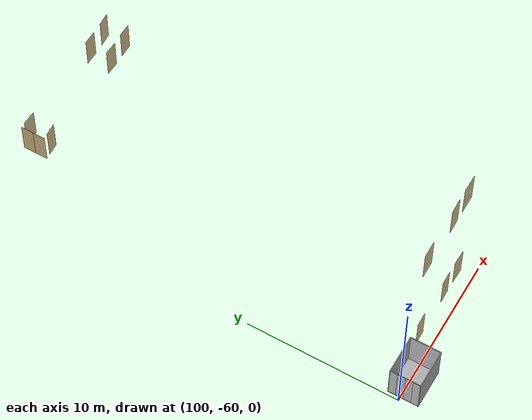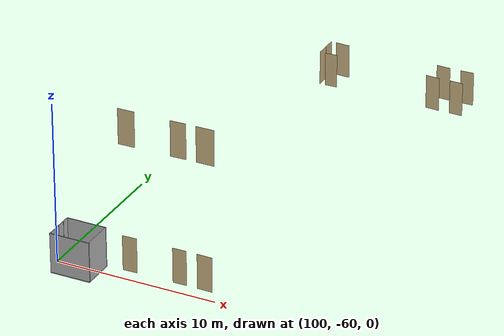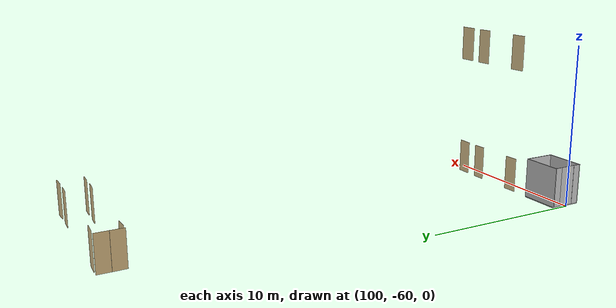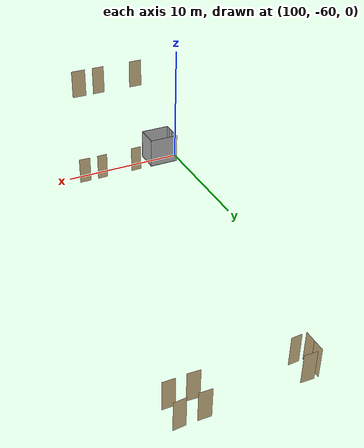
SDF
<sdf version="1.7">
 <world name="sim_world">
  <model name="puerta16">
   <pose>103.8129578128484 -32.91683320781389 0.0 0 0 1.5707963267948966</pose>
   <link name="right">
    <pose>0.40783998586328707 0 1.11 0 0 0</pose>
    <visual name="right_visual">
     <geometry><box><size>0.8056799717265741 0.03 2.2</size></box></geometry>
     <material>
      <ambient>0.5 0.25 0 0.6</ambient>
      <diffuse>0.5 0.25 0 0.6</diffuse>
      <pbr><metal><metalness>0.0</metalness></metal></pbr>
     </material>
    </visual>
    <collision name="right_collision">
     <geometry><box><size>0.8056799717265741 0.03 2.2</size></box></geometry>
     <surface><contact><collide_bitmask>0x02</collide_bitmask></contact></surface>
    </collision>
    <inertial>
     <mass>50.0</mass>
     <inertia><ixx>20.17041666666667</ixx><iyy>22.871334236838894</iyy><izz>2.708417570172222</izz></inertia>
    </inertial>
   </link>
   <joint name="right_joint" type="revolute">
    <parent>world</parent>
    <child>right</child>
    <axis><xyz>0 0 -1</xyz><limit><lower>0</lower><upper>1.57</upper></limit></axis>
    <pose>0.40783998586328707 0 0 0 0 0</pose>
   </joint>
   <link name="left">
    <pose>-0.40783998586328707 0 1.11 0 0 0</pose>
    <visual name="left_visual">
     <geometry><box><size>0.8056799717265741 0.03 2.2</size></box></geometry>
     <material>
      <ambient>0.5 0.25 0 0.6</ambient>
      <diffuse>0.5 0.25 0 0.6</diffuse>
      <pbr><metal><metalness>0.0</metalness></metal></pbr>
     </material>
    </visual>
    <collision name="left_collision">
     <geometry><box><size>0.8056799717265741 0.03 2.2</size></box></geometry>
     <surface><contact><collide_bitmask>0x02</collide_bitmask></contact></surface>
    </collision>
    <inertial>
     <mass>50.0</mass>
     <inertia><ixx>20.17041666666667</ixx><iyy>22.871334236838894</iyy><izz>2.708417570172222</izz></inertia>
    </inertial>
   </link>
   <joint name="left_joint" type="revolute">
    <parent>world</parent>
    <child>left</child>
    <axis><xyz>0 0 -1</xyz><limit><lower>-1.57</lower><upper>0</upper></limit></axis>
    <pose>-0.40783998586328707 0 0 0 0 0</pose>
   </joint>
   <plugin name="register_component" filename="libregister_component.so">
    <component name="Door">
     <v_max_door>0.5</v_max_door>
     <a_max_door>0.3</a_max_door>
     <a_nom_door>0.15</a_nom_door>
     <dx_min_door>0.01</dx_min_door>
     <f_max_door>500.0</f_max_door>
     <ros_interface>true</ros_interface>
     <door name="puerta16" type="DoubleSwingDoor" left_joint_name="left_joint" right_joint_name="right_joint"/>
    </component>
   </plugin>
  </model>
  <model name="puerta17">
   <pose>104.5937588091501 -32.12347325594603 0.0 0 0 3.093986082694925</pose>
   <link name="right">
    <pose>0 0 1.11 0 0 0</pose>
    <visual name="right_visual">
     <geometry><box><size>0.9280408053211409 0.03 2.2</size></box></geometry>
     <material>
      <ambient>0.5 0.25 0 0.6</ambient>
      <diffuse>0.5 0.25 0 0.6</diffuse>
      <pbr><metal><metalness>0.0</metalness></metal></pbr>
     </material>
    </visual>
    <collision name="right_collision">
     <geometry><box><size>0.9280408053211409 0.03 2.2</size></box></geometry>
     <surface><contact><collide_bitmask>0x02</collide_bitmask></contact></surface>
    </collision>
    <inertial>
     <mass>50.0</mass>
     <inertia><ixx>20.17041666666667</ixx><iyy>23.755248901421304</iyy><izz>3.592332234754632</izz></inertia>
    </inertial>
   </link>
   <joint name="right_joint" type="revolute">
    <parent>world</parent>
    <child>right</child>
    <axis><xyz>0 0 1</xyz><limit><lower>0</lower><upper>1.57</upper></limit></axis>
    <pose>0.46902040266057043 0 0 0 0 0</pose>
   </joint>
   <plugin name="register_component" filename="libregister_component.so">
    <component name="Door">
     <v_max_door>0.5</v_max_door>
     <a_max_door>0.3</a_max_door>
     <a_nom_door>0.15</a_nom_door>
     <dx_min_door>0.01</dx_min_door>
     <f_max_door>500.0</f_max_door>
     <ros_interface>true</ros_interface>
     <door name="puerta17" type="SwingDoor" left_joint_name="empty_joint" right_joint_name="right_joint"/>
    </component>
   </plugin>
  </model>
  <model name="puerta18">
   <pose>104.53996777165837 -33.685685315067786 0.0 0 0 -3.0890348459921255</pose>
   <link name="right">
    <pose>0 0 1.11 0 0 0</pose>
    <visual name="right_visual">
     <geometry><box><size>0.778074015602144 0.03 2.2</size></box></geometry>
     <material>
      <ambient>0.5 0.25 0 0.6</ambient>
      <diffuse>0.5 0.25 0 0.6</diffuse>
      <pbr><metal><metalness>0.0</metalness></metal></pbr>
     </material>
    </visual>
    <collision name="right_collision">
     <geometry><box><size>0.778074015602144 0.03 2.2</size></box></geometry>
     <surface><contact><collide_bitmask>0x02</collide_bitmask></contact></surface>
    </collision>
    <inertial>
     <mass>50.0</mass>
     <inertia><ixx>20.17041666666667</ixx><iyy>22.68916322398019</iyy><izz>2.5262465573135224</izz></inertia>
    </inertial>
   </link>
   <joint name="right_joint" type="revolute">
    <parent>world</parent>
    <child>right</child>
    <axis><xyz>0 0 -1</xyz><limit><lower>0</lower><upper>1.57</upper></limit></axis>
    <pose>0.394037007801072 0 0 0 0 0</pose>
   </joint>
   <plugin name="register_component" filename="libregister_component.so">
    <component name="Door">
     <v_max_door>0.5</v_max_door>
     <a_max_door>0.3</a_max_door>
     <a_nom_door>0.15</a_nom_door>
     <dx_min_door>0.01</dx_min_door>
     <f_max_door>500.0</f_max_door>
     <ros_interface>true</ros_interface>
     <door name="puerta18" type="SwingDoor" left_joint_name="empty_joint" right_joint_name="right_joint"/>
    </component>
   </plugin>
  </model>
  <model name="puerta19">
   <pose>111.47225880283908 -32.160666276785065 0.0 0 0 -0.0333225657936494</pose>
   <link name="right">
    <pose>0 0 1.11 0 0 0</pose>
    <visual name="right_visual">
     <geometry><box><size>0.8828336376845018 0.03 2.2</size></box></geometry>
     <material>
      <ambient>0.5 0.25 0 0.6</ambient>
      <diffuse>0.5 0.25 0 0.6</diffuse>
      <pbr><metal><metalness>0.0</metalness></metal></pbr>
     </material>
    </visual>
    <collision name="right_collision">
     <geometry><box><size>0.8828336376845018 0.03 2.2</size></box></geometry>
     <surface><contact><collide_bitmask>0x02</collide_bitmask></contact></surface>
    </collision>
    <inertial>
     <mass>50.0</mass>
     <inertia><ixx>20.17041666666667</ixx><iyy>23.414146799280214</iyy><izz>3.251230132613543</izz></inertia>
    </inertial>
   </link>
   <joint name="right_joint" type="revolute">
    <parent>world</parent>
    <child>right</child>
    <axis><xyz>0 0 -1</xyz><limit><lower>0</lower><upper>1.57</upper></limit></axis>
    <pose>0.44641681884225093 0 0 0 0 0</pose>
   </joint>
   <plugin name="register_component" filename="libregister_component.so">
    <component name="Door">
     <v_max_door>0.5</v_max_door>
     <a_max_door>0.3</a_max_door>
     <a_nom_door>0.15</a_nom_door>
     <dx_min_door>0.01</dx_min_door>
     <f_max_door>500.0</f_max_door>
     <ros_interface>true</ros_interface>
     <door name="puerta19" type="SwingDoor" left_joint_name="empty_joint" right_joint_name="right_joint"/>
    </component>
   </plugin>
  </model>
  <model name="puerta20">
   <pose>111.42940688912353 -33.69079725175551 0.0 0 0 -0.05792736840237623</pose>
   <link name="right">
    <pose>0 0 1.11 0 0 0</pose>
    <visual name="right_visual">
     <geometry><box><size>0.8816878807771851 0.03 2.2</size></box></geometry>
     <material>
      <ambient>0.5 0.25 0 0.6</ambient>
      <diffuse>0.5 0.25 0 0.6</diffuse>
      <pbr><metal><metalness>0.0</metalness></metal></pbr>
     </material>
    </visual>
    <collision name="right_collision">
     <geometry><box><size>0.8816878807771851 0.03 2.2</size></box></geometry>
     <surface><contact><collide_bitmask>0x02</collide_bitmask></contact></surface>
    </collision>
    <inertial>
     <mass>50.0</mass>
     <inertia><ixx>20.17041666666667</ixx><iyy>23.40572299628902</iyy><izz>3.242806329622349</izz></inertia>
    </inertial>
   </link>
   <joint name="right_joint" type="revolute">
    <parent>world</parent>
    <child>right</child>
    <axis><xyz>0 0 1</xyz><limit><lower>0</lower><upper>1.57</upper></limit></axis>
    <pose>0.44584394038859254 0 0 0 0 0</pose>
   </joint>
   <plugin name="register_component" filename="libregister_component.so">
    <component name="Door">
     <v_max_door>0.5</v_max_door>
     <a_max_door>0.3</a_max_door>
     <a_nom_door>0.15</a_nom_door>
     <dx_min_door>0.01</dx_min_door>
     <f_max_door>500.0</f_max_door>
     <ros_interface>true</ros_interface>
     <door name="puerta20" type="SwingDoor" left_joint_name="empty_joint" right_joint_name="right_joint"/>
    </component>
   </plugin>
  </model>
  <model name="puerta21">
   <pose>112.99944462910057 -33.70432389904029 0.0 0 0 3.109967890999371</pose>
   <link name="right">
    <pose>0 0 1.11 0 0 0</pose>
    <visual name="right_visual">
     <geometry><box><size>0.846919796126006 0.03 2.2</size></box></geometry>
     <material>
      <ambient>0.5 0.25 0 0.6</ambient>
      <diffuse>0.5 0.25 0 0.6</diffuse>
      <pbr><metal><metalness>0.0</metalness></metal></pbr>
     </material>
    </visual>
    <collision name="right_collision">
     <geometry><box><size>0.846919796126006 0.03 2.2</size></box></geometry>
     <surface><contact><collide_bitmask>0x02</collide_bitmask></contact></surface>
    </collision>
    <inertial>
     <mass>50.0</mass>
     <inertia><ixx>20.17041666666667</ixx><iyy>23.155304754458818</iyy><izz>2.9923880877921483</izz></inertia>
    </inertial>
   </link>
   <joint name="right_joint" type="revolute">
    <parent>world</parent>
    <child>right</child>
    <axis><xyz>0 0 -1</xyz><limit><lower>0</lower><upper>1.57</upper></limit></axis>
    <pose>0.428459898063003 0 0 0 0 0</pose>
   </joint>
   <plugin name="register_component" filename="libregister_component.so">
    <component name="Door">
     <v_max_door>0.5</v_max_door>
     <a_max_door>0.3</a_max_door>
     <a_nom_door>0.15</a_nom_door>
     <dx_min_door>0.01</dx_min_door>
     <f_max_door>500.0</f_max_door>
     <ros_interface>true</ros_interface>
     <door name="puerta21" type="SwingDoor" left_joint_name="empty_joint" right_joint_name="right_joint"/>
    </component>
   </plugin>
  </model>
  <model name="puerta22">
   <pose>113.05615977852477 -32.15321925790666 0.0 0 0 -3.0889835429859094</pose>
   <link name="right">
    <pose>0 0 1.11 0 0 0</pose>
    <visual name="right_visual">
     <geometry><box><size>0.8389145263994523 0.03 2.2</size></box></geometry>
     <material>
      <ambient>0.5 0.25 0 0.6</ambient>
      <diffuse>0.5 0.25 0 0.6</diffuse>
      <pbr><metal><metalness>0.0</metalness></metal></pbr>
     </material>
    </visual>
    <collision name="right_collision">
     <geometry><box><size>0.8389145263994523 0.03 2.2</size></box></geometry>
     <surface><contact><collide_bitmask>0x02</collide_bitmask></contact></surface>
    </collision>
    <inertial>
     <mass>50.0</mass>
     <inertia><ixx>20.17041666666667</ixx><iyy>23.099073260850076</iyy><izz>2.936156594183406</izz></inertia>
    </inertial>
   </link>
   <joint name="right_joint" type="revolute">
    <parent>world</parent>
    <child>right</child>
    <axis><xyz>0 0 1</xyz><limit><lower>0</lower><upper>1.57</upper></limit></axis>
    <pose>0.42445726319972615 0 0 0 0 0</pose>
   </joint>
   <plugin name="register_component" filename="libregister_component.so">
    <component name="Door">
     <v_max_door>0.5</v_max_door>
     <a_max_door>0.3</a_max_door>
     <a_nom_door>0.15</a_nom_door>
     <dx_min_door>0.01</dx_min_door>
     <f_max_door>500.0</f_max_door>
     <ros_interface>true</ros_interface>
     <door name="puerta22" type="SwingDoor" left_joint_name="empty_joint" right_joint_name="right_joint"/>
    </component>
   </plugin>
  </model>
  <model name="puerta127">
   <pose>104.19393383513054 -59.12922471063912 0.0 0 0 0.030278170194955826</pose>
   <link name="right">
    <pose>0 0 1.11 0 0 0</pose>
    <visual name="right_visual">
     <geometry><box><size>0.8891873803086136 0.03 2.2</size></box></geometry>
     <material>
      <ambient>0.5 0.25 0 0.6</ambient>
      <diffuse>0.5 0.25 0 0.6</diffuse>
      <pbr><metal><metalness>0.0</metalness></metal></pbr>
     </material>
    </visual>
    <collision name="right_collision">
     <geometry><box><size>0.8891873803086136 0.03 2.2</size></box></geometry>
     <surface><contact><collide_bitmask>0x02</collide_bitmask></contact></surface>
    </collision>
    <inertial>
     <mass>50.0</mass>
     <inertia><ixx>20.17041666666667</ixx><iyy>23.461059155417068</iyy><izz>3.2981424887503956</izz></inertia>
    </inertial>
   </link>
   <joint name="right_joint" type="revolute">
    <parent>world</parent>
    <child>right</child>
    <axis><xyz>0 0 -1</xyz><limit><lower>0</lower><upper>1.57</upper></limit></axis>
    <pose>0.4495936901543068 0 0 0 0 0</pose>
   </joint>
   <plugin name="register_component" filename="libregister_component.so">
    <component name="Door">
     <v_max_door>0.5</v_max_door>
     <a_max_door>0.3</a_max_door>
     <a_nom_door>0.15</a_nom_door>
     <dx_min_door>0.01</dx_min_door>
     <f_max_door>500.0</f_max_door>
     <ros_interface>true</ros_interface>
     <door name="puerta127" type="SwingDoor" left_joint_name="empty_joint" right_joint_name="right_joint"/>
    </component>
   </plugin>
  </model>
  <model name="puerta128">
   <pose>107.33289436593049 -59.10879800066474 0.0 0 0 0.015888025951123645</pose>
   <link name="right">
    <pose>0 0 1.11 0 0 0</pose>
    <visual name="right_visual">
     <geometry><box><size>0.8480301126455676 0.03 2.2</size></box></geometry>
     <material>
      <ambient>0.5 0.25 0 0.6</ambient>
      <diffuse>0.5 0.25 0 0.6</diffuse>
      <pbr><metal><metalness>0.0</metalness></metal></pbr>
     </material>
    </visual>
    <collision name="right_collision">
     <geometry><box><size>0.8480301126455676 0.03 2.2</size></box></geometry>
     <surface><contact><collide_bitmask>0x02</collide_bitmask></contact></surface>
    </collision>
    <inertial>
     <mass>50.0</mass>
     <inertia><ixx>20.17041666666667</ixx><iyy>23.16314613314023</iyy><izz>3.0002294664735585</izz></inertia>
    </inertial>
   </link>
   <joint name="right_joint" type="revolute">
    <parent>world</parent>
    <child>right</child>
    <axis><xyz>0 0 -1</xyz><limit><lower>0</lower><upper>1.57</upper></limit></axis>
    <pose>0.4290150563227838 0 0 0 0 0</pose>
   </joint>
   <plugin name="register_component" filename="libregister_component.so">
    <component name="Door">
     <v_max_door>0.5</v_max_door>
     <a_max_door>0.3</a_max_door>
     <a_nom_door>0.15</a_nom_door>
     <dx_min_door>0.01</dx_min_door>
     <f_max_door>500.0</f_max_door>
     <ros_interface>true</ros_interface>
     <door name="puerta128" type="SwingDoor" left_joint_name="empty_joint" right_joint_name="right_joint"/>
    </component>
   </plugin>
  </model>
  <model name="puerta131">
   <pose>108.9057931075105 -59.115592879471876 0.0 0 0 3.1130453752101825</pose>
   <link name="right">
    <pose>0 0 1.11 0 0 0</pose>
    <visual name="right_visual">
     <geometry><box><size>0.9436911410675745 0.03 2.2</size></box></geometry>
     <material>
      <ambient>0.5 0.25 0 0.6</ambient>
      <diffuse>0.5 0.25 0 0.6</diffuse>
      <pbr><metal><metalness>0.0</metalness></metal></pbr>
     </material>
    </visual>
    <collision name="right_collision">
     <geometry><box><size>0.9436911410675745 0.03 2.2</size></box></geometry>
     <surface><contact><collide_bitmask>0x02</collide_bitmask></contact></surface>
    </collision>
    <inertial>
     <mass>50.0</mass>
     <inertia><ixx>20.17041666666667</ixx><iyy>23.877304040539258</iyy><izz>3.7143873738725866</izz></inertia>
    </inertial>
   </link>
   <joint name="right_joint" type="revolute">
    <parent>world</parent>
    <child>right</child>
    <axis><xyz>0 0 1</xyz><limit><lower>0</lower><upper>1.57</upper></limit></axis>
    <pose>0.47684557053378723 0 0 0 0 0</pose>
   </joint>
   <plugin name="register_component" filename="libregister_component.so">
    <component name="Door">
     <v_max_door>0.5</v_max_door>
     <a_max_door>0.3</a_max_door>
     <a_nom_door>0.15</a_nom_door>
     <dx_min_door>0.01</dx_min_door>
     <f_max_door>500.0</f_max_door>
     <ros_interface>true</ros_interface>
     <door name="puerta131" type="SwingDoor" left_joint_name="empty_joint" right_joint_name="right_joint"/>
    </component>
   </plugin>
  </model>
  <model name="puerta194">
   <pose>109.00400192881943 -59.07908366108005 8.0 0 0 -3.1412561576425926</pose>
   <link name="right">
    <pose>0 0 1.11 0 0 0</pose>
    <visual name="right_visual">
     <geometry><box><size>1.1030287416206657 0.03 2.2</size></box></geometry>
     <material>
      <ambient>0.5 0.25 0 0.6</ambient>
      <diffuse>0.5 0.25 0 0.6</diffuse>
      <pbr><metal><metalness>0.0</metalness></metal></pbr>
     </material>
    </visual>
    <collision name="right_collision">
     <geometry><box><size>1.1030287416206657 0.03 2.2</size></box></geometry>
     <surface><contact><collide_bitmask>0x02</collide_bitmask></contact></surface>
    </collision>
    <inertial>
     <mass>50.0</mass>
     <inertia><ixx>20.17041666666667</ixx><iyy>25.236135020171957</iyy><izz>5.073218353505288</izz></inertia>
    </inertial>
   </link>
   <joint name="right_joint" type="revolute">
    <parent>world</parent>
    <child>right</child>
    <axis><xyz>0 0 1</xyz><limit><lower>0</lower><upper>1.57</upper></limit></axis>
    <pose>0.5565143708103328 0 0 0 0 0</pose>
   </joint>
   <plugin name="register_component" filename="libregister_component.so">
    <component name="Door">
     <v_max_door>0.5</v_max_door>
     <a_max_door>0.3</a_max_door>
     <a_nom_door>0.15</a_nom_door>
     <dx_min_door>0.01</dx_min_door>
     <f_max_door>500.0</f_max_door>
     <ros_interface>true</ros_interface>
     <door name="puerta194" type="SwingDoor" left_joint_name="empty_joint" right_joint_name="right_joint"/>
    </component>
   </plugin>
  </model>
  <model name="puerta197">
   <pose>107.35434545337873 -59.09455516754083 8.0 0 0 0.03159698356441595</pose>
   <link name="right">
    <pose>0 0 1.11 0 0 0</pose>
    <visual name="right_visual">
     <geometry><box><size>0.9444849566357189 0.03 2.2</size></box></geometry>
     <material>
      <ambient>0.5 0.25 0 0.6</ambient>
      <diffuse>0.5 0.25 0 0.6</diffuse>
      <pbr><metal><metalness>0.0</metalness></metal></pbr>
     </material>
    </visual>
    <collision name="right_collision">
     <geometry><box><size>0.9444849566357189 0.03 2.2</size></box></geometry>
     <surface><contact><collide_bitmask>0x02</collide_bitmask></contact></surface>
    </collision>
    <inertial>
     <mass>50.0</mass>
     <inertia><ixx>20.17041666666667</ixx><iyy>23.883549305463237</iyy><izz>3.720632638796566</izz></inertia>
    </inertial>
   </link>
   <joint name="right_joint" type="revolute">
    <parent>world</parent>
    <child>right</child>
    <axis><xyz>0 0 -1</xyz><limit><lower>0</lower><upper>1.57</upper></limit></axis>
    <pose>0.47724247831785943 0 0 0 0 0</pose>
   </joint>
   <plugin name="register_component" filename="libregister_component.so">
    <component name="Door">
     <v_max_door>0.5</v_max_door>
     <a_max_door>0.3</a_max_door>
     <a_nom_door>0.15</a_nom_door>
     <dx_min_door>0.01</dx_min_door>
     <f_max_door>500.0</f_max_door>
     <ros_interface>true</ros_interface>
     <door name="puerta197" type="SwingDoor" left_joint_name="empty_joint" right_joint_name="right_joint"/>
    </component>
   </plugin>
  </model>
  <model name="puerta198">
   <pose>104.14446445018054 -59.115516804941876 8.0 0 0 0.009944538365692656</pose>
   <link name="right">
    <pose>0 0 1.11 0 0 0</pose>
    <visual name="right_visual">
     <geometry><box><size>1.0235503499404146 0.03 2.2</size></box></geometry>
     <material>
      <ambient>0.5 0.25 0 0.6</ambient>
      <diffuse>0.5 0.25 0 0.6</diffuse>
      <pbr><metal><metalness>0.0</metalness></metal></pbr>
     </material>
    </visual>
    <collision name="right_collision">
     <geometry><box><size>1.0235503499404146 0.03 2.2</size></box></geometry>
     <surface><contact><collide_bitmask>0x02</collide_bitmask></contact></surface>
    </collision>
    <inertial>
     <mass>50.0</mass>
     <inertia><ixx>20.17041666666667</ixx><iyy>24.531897161929777</iyy><izz>4.368980495263105</izz></inertia>
    </inertial>
   </link>
   <joint name="right_joint" type="revolute">
    <parent>world</parent>
    <child>right</child>
    <axis><xyz>0 0 -1</xyz><limit><lower>0</lower><upper>1.57</upper></limit></axis>
    <pose>0.5167751749702073 0 0 0 0 0</pose>
   </joint>
   <plugin name="register_component" filename="libregister_component.so">
    <component name="Door">
     <v_max_door>0.5</v_max_door>
     <a_max_door>0.3</a_max_door>
     <a_nom_door>0.15</a_nom_door>
     <dx_min_door>0.01</dx_min_door>
     <f_max_door>500.0</f_max_door>
     <ros_interface>true</ros_interface>
     <door name="puerta198" type="SwingDoor" left_joint_name="empty_joint" right_joint_name="right_joint"/>
    </component>
   </plugin>
  </model>
  <model name="lift1">
   <link name="platform">
    <inertial>
     <mass>1200</mass>
     <inertia><ixx>625.25</ixx><iyy>400.25000000000006</iyy><izz>1025.0</izz></inertia>
    </inertial>
    <visual name="floor_visual">
     <pose>0 0 -0.025 0 0 0</pose>
     <geometry><box><size>2.5 2.0 0.05</size></box></geometry>
     <material>
      <ambient>0.5 0.5 0.5 1</ambient>
      <diffuse>0.7 0.7 0.7 1</diffuse>
      <specular>0.6 0.6 0.6 1</specular>
      <emissive>0.1 0.1 0.1 1</emissive>
     </material>
    </visual>
    <collision name="floor_collision">
     <pose>0 0 -0.025 0 0 0</pose>
     <geometry><box><size>2.5 2.0 0.05</size></box></geometry>
     <surface><contact><collide_bitmask>0x01</collide_bitmask></contact></surface>
    </collision>
    <visual name="frontwall1_visual">
     <pose>0.0 0.975 1.25 0 0 0</pose>
     <geometry><box><size>2.5 0.05 2.5</size></box></geometry>
     <material>
      <ambient>0.5 0.5 0.5 1</ambient>
      <diffuse>0.7 0.7 0.7 1</diffuse>
      <specular>0.6 0.6 0.6 1</specular>
      <emissive>0.1 0.1 0.1 1</emissive>
     </material>
    </visual>
    <collision name="frontwall1_collision">
     <pose>0.0 0.975 1.25 0 0 0</pose>
     <geometry><box><size>2.5 0.05 2.5</size></box></geometry>
     <surface><contact><collide_bitmask>0x01</collide_bitmask></contact></surface>
    </collision>
    <visual name="backwall1_visual">
     <pose>0.0 -0.975 1.25 0 0 0</pose>
     <geometry><box><size>2.5 0.05 2.5</size></box></geometry>
     <material>
      <ambient>0.5 0.5 0.5 1</ambient>
      <diffuse>0.7 0.7 0.7 1</diffuse>
      <specular>0.6 0.6 0.6 1</specular>
      <emissive>0.1 0.1 0.1 1</emissive>
     </material>
    </visual>
    <collision name="backwall1_collision">
     <pose>0.0 -0.975 1.25 0 0 0</pose>
     <geometry><box><size>2.5 0.05 2.5</size></box></geometry>
     <surface><contact><collide_bitmask>0x01</collide_bitmask></contact></surface>
    </collision>
    <visual name="leftwall1_visual">
     <pose>-1.225 -0.725 1.25 0 0 1.5707963267948966</pose>
     <geometry><box><size>0.44999999999999996 0.05 2.5</size></box></geometry>
     <material>
      <ambient>0.5 0.5 0.5 1</ambient>
      <diffuse>0.7 0.7 0.7 1</diffuse>
      <specular>0.6 0.6 0.6 1</specular>
      <emissive>0.1 0.1 0.1 1</emissive>
     </material>
    </visual>
    <collision name="leftwall1_collision">
     <pose>-1.225 -0.725 1.25 0 0 1.5707963267948966</pose>
     <geometry><box><size>0.44999999999999996 0.05 2.5</size></box></geometry>
     <surface><contact><collide_bitmask>0x01</collide_bitmask></contact></surface>
    </collision>
    <visual name="leftwall2_visual">
     <pose>-1.225 0.725 1.25 0 0 1.5707963267948966</pose>
     <geometry><box><size>0.44999999999999996 0.05 2.5</size></box></geometry>
     <material>
      <ambient>0.5 0.5 0.5 1</ambient>
      <diffuse>0.7 0.7 0.7 1</diffuse>
      <specular>0.6 0.6 0.6 1</specular>
      <emissive>0.1 0.1 0.1 1</emissive>
     </material>
    </visual>
    <collision name="leftwall2_collision">
     <pose>-1.225 0.725 1.25 0 0 1.5707963267948966</pose>
     <geometry><box><size>0.44999999999999996 0.05 2.5</size></box></geometry>
     <surface><contact><collide_bitmask>0x01</collide_bitmask></contact></surface>
    </collision>
    <visual name="rightwall1_visual">
     <pose>1.225 0.0 1.25 0 0 1.5707963267948966</pose>
     <geometry><box><size>1.9 0.05 2.5</size></box></geometry>
     <material>
      <ambient>0.5 0.5 0.5 1</ambient>
      <diffuse>0.7 0.7 0.7 1</diffuse>
      <specular>0.6 0.6 0.6 1</specular>
      <emissive>0.1 0.1 0.1 1</emissive>
     </material>
    </visual>
    <collision name="rightwall1_collision">
     <pose>1.225 0.0 1.25 0 0 1.5707963267948966</pose>
     <geometry><box><size>1.9 0.05 2.5</size></box></geometry>
     <surface><contact><collide_bitmask>0x01</collide_bitmask></contact></surface>
    </collision>
   </link>
   <joint name="cabin_joint" type="prismatic">
    <parent>world</parent>
    <child>platform</child>
    <axis><xyz>0 0 1</xyz></axis>
   </joint>
   <model name="CabinDoor_lift1_lift1">
    <pose>-1.225 0.0 0 0 0 1.5707</pose>
    <link name="right_door">
     <pose>0.25 0 1.25 0 0 0</pose>
     <visual name="right_door_visual">
      <geometry><box><size>0.5 0.03 2.5</size></box></geometry>
      <material>
       <ambient>0.5 0.5 0.5 1</ambient>
       <diffuse>0.7 0.7 0.7 1</diffuse>
       <specular>0.6 0.6 0.6 1</specular>
       <emissive>0.1 0.1 0.1 1</emissive>
      </material>
     </visual>
     <collision name="right_door_collision">
      <geometry><box><size>0.5 0.03 2.5</size></box></geometry>
      <surface><contact><collide_bitmask>0x02</collide_bitmask></contact></surface>
     </collision>
    </link>
    <link name="left_door">
     <pose>-0.25 0 1.25 0 0 0</pose>
     <visual name="left_door_visual">
      <geometry><box><size>0.5 0.03 2.5</size></box></geometry>
      <material>
       <ambient>0.5 0.5 0.5 1</ambient>
       <diffuse>0.7 0.7 0.7 1</diffuse>
       <specular>0.6 0.6 0.6 1</specular>
       <emissive>0.1 0.1 0.1 1</emissive>
      </material>
     </visual>
     <collision name="left_door_collision">
      <geometry><box><size>0.5 0.03 2.5</size></box></geometry>
      <surface><contact><collide_bitmask>0x02</collide_bitmask></contact></surface>
     </collision>
    </link>
    <plugin name="register_component" filename="libregister_component.so">
     <component name="Door">
      <v_max_door>0.3</v_max_door>
      <a_max_door>0.2</a_max_door>
      <a_nom_door>0.1</a_nom_door>
      <dx_min_door>0.0001</dx_min_door>
      <f_max_door>35.0</f_max_door>
      <door left_joint_name="CabinDoor_lift1_lift1_left_joint" name="CabinDoor_lift1_lift1" right_joint_name="CabinDoor_lift1_lift1_right_joint" type="DoubleSlidingDoor"/>
     </component>
    </plugin>
   </model>
   <joint name="CabinDoor_lift1_lift1_right_joint" type="prismatic">
    <parent>platform</parent>
    <child>CabinDoor_lift1_lift1::right_door</child>
    <axis><xyz>1 0 0</xyz><limit><lower>0</lower><upper>0.5</upper></limit></axis>
   </joint>
   <joint name="CabinDoor_lift1_lift1_left_joint" type="prismatic">
    <parent>platform</parent>
    <child>CabinDoor_lift1_lift1::left_door</child>
    <axis><xyz>1 0 0</xyz><limit><lower>-0.5</lower><upper>0</upper></limit></axis>
   </joint>
   <plugin name="register_component" filename="libregister_component.so">
    <component name="Lift">
     <lift_name>lift1</lift_name>
     <floor name="planta_1" elevation="0.0">
      <door_pair cabin_door="CabinDoor_lift1_lift1" shaft_door="ShaftDoor_lift1_planta_1_lift1"/>
     </floor>
     <floor name="planta_2" elevation="8.0">
      <door_pair cabin_door="CabinDoor_lift1_lift1" shaft_door="ShaftDoor_lift1_planta_2_lift1"/>
     </floor>
     <initial_floor>planta_1</initial_floor>
     <v_max_cabin>2.0</v_max_cabin>
     <a_max_cabin>1.2</a_max_cabin>
     <a_nom_cabin>1.0</a_nom_cabin>
     <dx_min_cabin>0.001</dx_min_cabin>
     <f_max_cabin>25323.0</f_max_cabin>
     <cabin_joint_name>cabin_joint</cabin_joint_name>
    </component>
   </plugin>
   <pose>101.48140980061339 -60.16518076902038 0 0 0 0.0</pose>
  </model>
 </world>
</sdf>
